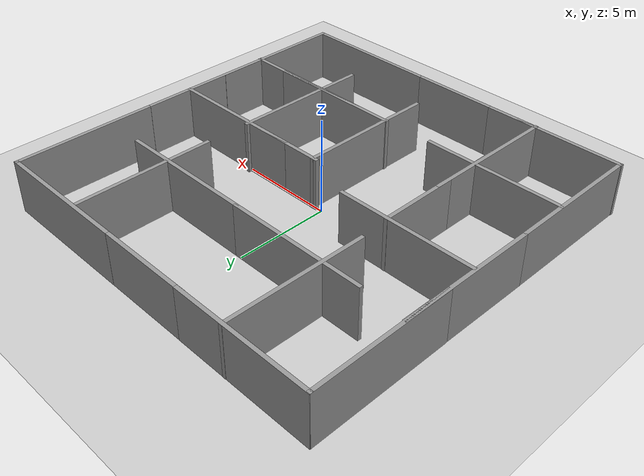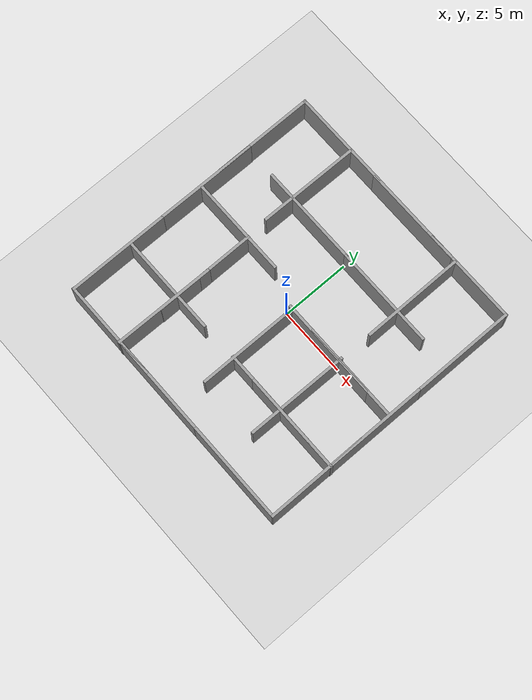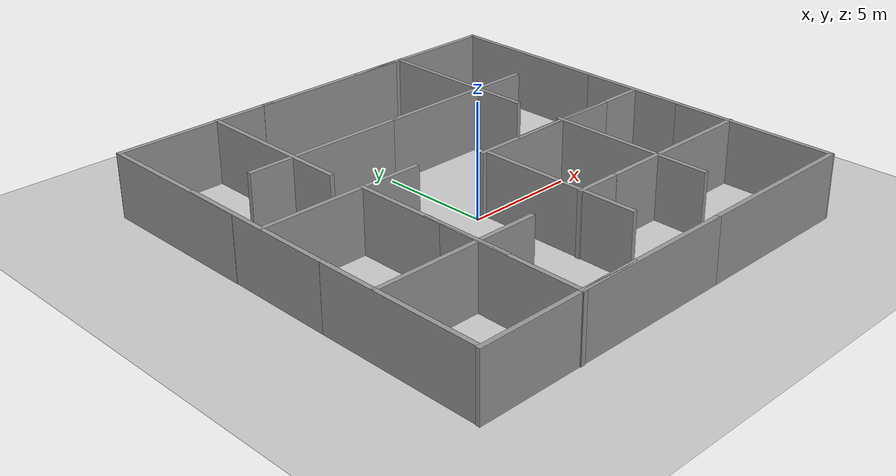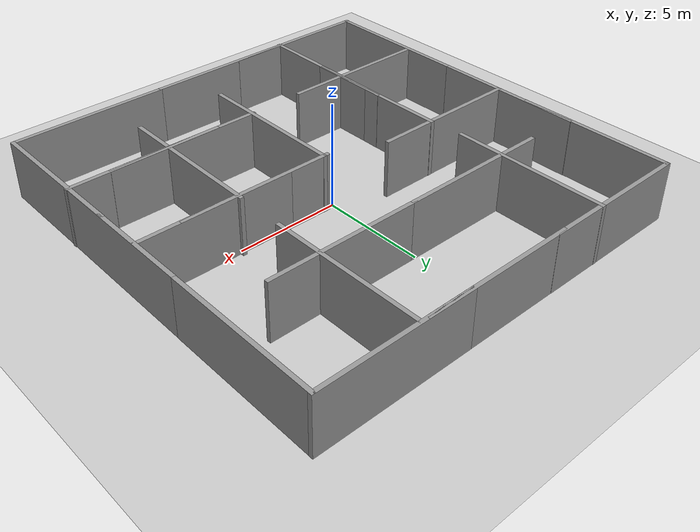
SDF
<sdf version="1.4">
 <world name="default">
  <light name="sun" type="directional">
   <pose>0 0 10 0 -0 0</pose>
   <diffuse>0.8 0.8 0.8 1</diffuse>
   <specular>0.2 0.2 0.2 1</specular>
   <attenuation>
    <range>1000</range>
    <constant>0.9</constant>
    <linear>0.01</linear>
    <quadratic>0.001</quadratic>
   </attenuation>
   <direction>-0.5 0.1 -0.9</direction>
  </light>
  <model name="ground_plane">
   <static>1</static>
   <link name="link">
    <collision name="collision">
     <geometry><plane><normal>0 0 1</normal><size>100 100</size></plane></geometry>
     <surface><friction><ode><mu>100</mu><mu2>50</mu2></ode></friction></surface>
    </collision>
    <visual name="visual">
     <cast_shadows>0</cast_shadows>
     <geometry><plane><normal>0 0 1</normal><size>100 100</size></plane></geometry>
     <material>
      <script><uri>file://media/materials/scripts/gazebo.material</uri><name>Gazebo/Grey</name></script>
     </material>
    </visual>
    <velocity_decay><linear>0</linear><angular>0</angular></velocity_decay>
   </link>
  </model>
  <physics type="ode">
   <max_step_size>0.001</max_step_size>
   <real_time_factor>1</real_time_factor>
   <real_time_update_rate>1000</real_time_update_rate>
   <gravity>0 0 -9.8</gravity>
  </physics>
  <scene><ambient>0.4 0.4 0.4 1</ambient><background>0.7 0.7 0.7 1</background><shadows>1</shadows></scene>
  <spherical_coordinates>
   <surface_model>EARTH_WGS84</surface_model>
   <latitude_deg>0</latitude_deg>
   <longitude_deg>0</longitude_deg>
   <elevation>0</elevation>
   <heading_deg>0</heading_deg>
  </spherical_coordinates>
  <model name="grey_wall">
   <static>1</static>
   <link name="link">
    <pose>0 0 1.4 0 -0 0</pose>
    <collision name="collision"><geometry><box><size>7.5 0.2 2.8</size></box></geometry></collision>
    <visual name="visual">
     <cast_shadows>0</cast_shadows>
     <geometry><box><size>7.5 0.2 2.8</size></box></geometry>
     <material>
      <script>
       <uri>model://grey_wall/materials/scripts</uri>
       <uri>model://grey_wall/materials/textures</uri>
       <name>vrc/grey_wall</name>
      </script>
     </material>
    </visual>
    <velocity_decay><linear>0</linear><angular>0</angular></velocity_decay>
   </link>
   <pose>-5.96157 10.0081 0 0 -0 0</pose>
  </model>
  <model name="grey_wall_0">
   <static>1</static>
   <link name="link">
    <pose>0 0 1.4 0 -0 0</pose>
    <collision name="collision"><geometry><box><size>7.5 0.2 2.8</size></box></geometry></collision>
    <visual name="visual">
     <cast_shadows>0</cast_shadows>
     <geometry><box><size>7.5 0.2 2.8</size></box></geometry>
     <material>
      <script>
       <uri>model://grey_wall/materials/scripts</uri>
       <uri>model://grey_wall/materials/textures</uri>
       <name>vrc/grey_wall</name>
      </script>
     </material>
    </visual>
    <velocity_decay><linear>0</linear><angular>0</angular></velocity_decay>
   </link>
   <pose>1 10 0 0 -0 0</pose>
  </model>
  <model name="grey_wall_1">
   <static>1</static>
   <link name="link">
    <pose>0 0 1.4 0 -0 0</pose>
    <collision name="collision"><geometry><box><size>7.5 0.2 2.8</size></box></geometry></collision>
    <visual name="visual">
     <cast_shadows>0</cast_shadows>
     <geometry><box><size>7.5 0.2 2.8</size></box></geometry>
     <material>
      <script>
       <uri>model://grey_wall/materials/scripts</uri>
       <uri>model://grey_wall/materials/textures</uri>
       <name>vrc/grey_wall</name>
      </script>
     </material>
    </visual>
    <velocity_decay><linear>0</linear><angular>0</angular></velocity_decay>
   </link>
   <pose>6.14786 10.0027 0 0 -0 0</pose>
  </model>
  <model name="grey_wall_3">
   <static>1</static>
   <link name="link">
    <pose>0 0 1.4 0 -0 0</pose>
    <collision name="collision"><geometry><box><size>7.5 0.2 2.8</size></box></geometry></collision>
    <visual name="visual">
     <cast_shadows>0</cast_shadows>
     <geometry><box><size>7.5 0.2 2.8</size></box></geometry>
     <material>
      <script>
       <uri>model://grey_wall/materials/scripts</uri>
       <uri>model://grey_wall/materials/textures</uri>
       <name>vrc/grey_wall</name>
      </script>
     </material>
    </visual>
    <velocity_decay><linear>0</linear><angular>0</angular></velocity_decay>
   </link>
   <pose>9.78538 6.34474 0 0 -0 1.56855</pose>
  </model>
  <model name="grey_wall_4">
   <static>1</static>
   <link name="link">
    <pose>0 0 1.4 0 -0 0</pose>
    <collision name="collision"><geometry><box><size>7.5 0.2 2.8</size></box></geometry></collision>
    <visual name="visual">
     <cast_shadows>0</cast_shadows>
     <geometry><box><size>7.5 0.2 2.8</size></box></geometry>
     <material>
      <script>
       <uri>model://grey_wall/materials/scripts</uri>
       <uri>model://grey_wall/materials/textures</uri>
       <name>vrc/grey_wall</name>
      </script>
     </material>
    </visual>
    <velocity_decay><linear>0</linear><angular>0</angular></velocity_decay>
   </link>
   <pose>9.75711 -1.13244 0 0 -0 1.56736</pose>
  </model>
  <model name="grey_wall_5">
   <static>1</static>
   <link name="link">
    <pose>0 0 1.4 0 -0 0</pose>
    <collision name="collision"><geometry><box><size>7.5 0.2 2.8</size></box></geometry></collision>
    <visual name="visual">
     <cast_shadows>0</cast_shadows>
     <geometry><box><size>7.5 0.2 2.8</size></box></geometry>
     <material>
      <script>
       <uri>model://grey_wall/materials/scripts</uri>
       <uri>model://grey_wall/materials/textures</uri>
       <name>vrc/grey_wall</name>
      </script>
     </material>
    </visual>
    <velocity_decay><linear>0</linear><angular>0</angular></velocity_decay>
   </link>
   <pose>9.73644 -5.98487 0 0 0 -1.57237</pose>
  </model>
  <model name="grey_wall_7">
   <static>1</static>
   <link name="link">
    <pose>0 0 1.4 0 -0 0</pose>
    <collision name="collision"><geometry><box><size>7.5 0.2 2.8</size></box></geometry></collision>
    <visual name="visual">
     <cast_shadows>0</cast_shadows>
     <geometry><box><size>7.5 0.2 2.8</size></box></geometry>
     <material>
      <script>
       <uri>model://grey_wall/materials/scripts</uri>
       <uri>model://grey_wall/materials/textures</uri>
       <name>vrc/grey_wall</name>
      </script>
     </material>
    </visual>
    <velocity_decay><linear>0</linear><angular>0</angular></velocity_decay>
   </link>
   <pose>5.9918 -9.64321 0 0 -0 0</pose>
  </model>
  <model name="grey_wall_8">
   <static>1</static>
   <link name="link">
    <pose>0 0 1.4 0 -0 0</pose>
    <collision name="collision"><geometry><box><size>7.5 0.2 2.8</size></box></geometry></collision>
    <visual name="visual">
     <cast_shadows>0</cast_shadows>
     <geometry><box><size>7.5 0.2 2.8</size></box></geometry>
     <material>
      <script>
       <uri>model://grey_wall/materials/scripts</uri>
       <uri>model://grey_wall/materials/textures</uri>
       <name>vrc/grey_wall</name>
      </script>
     </material>
    </visual>
    <velocity_decay><linear>0</linear><angular>0</angular></velocity_decay>
   </link>
   <pose>-1.41746 -9.64548 0 0 -0 0</pose>
  </model>
  <model name="grey_wall_9">
   <static>1</static>
   <link name="link">
    <pose>0 0 1.4 0 -0 0</pose>
    <collision name="collision"><geometry><box><size>7.5 0.2 2.8</size></box></geometry></collision>
    <visual name="visual">
     <cast_shadows>0</cast_shadows>
     <geometry><box><size>7.5 0.2 2.8</size></box></geometry>
     <material>
      <script>
       <uri>model://grey_wall/materials/scripts</uri>
       <uri>model://grey_wall/materials/textures</uri>
       <name>vrc/grey_wall</name>
      </script>
     </material>
    </visual>
    <velocity_decay><linear>0</linear><angular>0</angular></velocity_decay>
   </link>
   <pose>-6.03302 -9.64453 0 0 -0 0</pose>
  </model>
  <model name="grey_wall_10">
   <static>1</static>
   <link name="link">
    <pose>0 0 1.4 0 -0 0</pose>
    <collision name="collision"><geometry><box><size>7.5 0.2 2.8</size></box></geometry></collision>
    <visual name="visual">
     <cast_shadows>0</cast_shadows>
     <geometry><box><size>7.5 0.2 2.8</size></box></geometry>
     <material>
      <script>
       <uri>model://grey_wall/materials/scripts</uri>
       <uri>model://grey_wall/materials/textures</uri>
       <name>vrc/grey_wall</name>
      </script>
     </material>
    </visual>
    <velocity_decay><linear>0</linear><angular>0</angular></velocity_decay>
   </link>
   <pose>-9.65272 -5.97375 0 0 0 -1.57283</pose>
  </model>
  <model name="grey_wall_11">
   <static>1</static>
   <link name="link">
    <pose>0 0 1.4 0 -0 0</pose>
    <collision name="collision"><geometry><box><size>7.5 0.2 2.8</size></box></geometry></collision>
    <visual name="visual">
     <cast_shadows>0</cast_shadows>
     <geometry><box><size>7.5 0.2 2.8</size></box></geometry>
     <material>
      <script>
       <uri>model://grey_wall/materials/scripts</uri>
       <uri>model://grey_wall/materials/textures</uri>
       <name>vrc/grey_wall</name>
      </script>
     </material>
    </visual>
    <velocity_decay><linear>0</linear><angular>0</angular></velocity_decay>
   </link>
   <pose>-9.62208 1.47202 0 0 0 -1.57829</pose>
  </model>
  <model name="grey_wall_12">
   <static>1</static>
   <link name="link">
    <pose>0 0 1.4 0 -0 0</pose>
    <collision name="collision"><geometry><box><size>7.5 0.2 2.8</size></box></geometry></collision>
    <visual name="visual">
     <cast_shadows>0</cast_shadows>
     <geometry><box><size>7.5 0.2 2.8</size></box></geometry>
     <material>
      <script>
       <uri>model://grey_wall/materials/scripts</uri>
       <uri>model://grey_wall/materials/textures</uri>
       <name>vrc/grey_wall</name>
      </script>
     </material>
    </visual>
    <velocity_decay><linear>0</linear><angular>0</angular></velocity_decay>
   </link>
   <pose>-9.62412 6.33238 0 0 0 -1.57147</pose>
  </model>
  <model name="grey_wall_15">
   <static>1</static>
   <link name="link">
    <pose>0 0 1.4 0 -0 0</pose>
    <collision name="collision"><geometry><box><size>7.5 0.2 2.8</size></box></geometry></collision>
    <visual name="visual">
     <cast_shadows>0</cast_shadows>
     <geometry><box><size>7.5 0.2 2.8</size></box></geometry>
     <material>
      <script>
       <uri>model://grey_wall/materials/scripts</uri>
       <uri>model://grey_wall/materials/textures</uri>
       <name>vrc/grey_wall</name>
      </script>
     </material>
    </visual>
    <velocity_decay><linear>0</linear><angular>0</angular></velocity_decay>
   </link>
   <pose>-5.07531 6.3682 0 0 0 -1.58036</pose>
  </model>
  <model name="grey_wall_17">
   <static>1</static>
   <link name="link">
    <pose>0 0 1.4 0 -0 0</pose>
    <collision name="collision"><geometry><box><size>7.5 0.2 2.8</size></box></geometry></collision>
    <visual name="visual">
     <cast_shadows>0</cast_shadows>
     <geometry><box><size>7.5 0.2 2.8</size></box></geometry>
     <material>
      <script>
       <uri>model://grey_wall/materials/scripts</uri>
       <uri>model://grey_wall/materials/textures</uri>
       <name>vrc/grey_wall</name>
      </script>
     </material>
    </visual>
    <velocity_decay><linear>0</linear><angular>0</angular></velocity_decay>
   </link>
   <pose>5.05751 6.28099 0 0 0 -1.56973</pose>
  </model>
  <model name="grey_wall_19">
   <static>1</static>
   <link name="link">
    <pose>0 0 1.4 0 -0 0</pose>
    <collision name="collision"><geometry><box><size>7.5 0.2 2.8</size></box></geometry></collision>
    <visual name="visual">
     <cast_shadows>0</cast_shadows>
     <geometry><box><size>7.5 0.2 2.8</size></box></geometry>
     <material>
      <script>
       <uri>model://grey_wall/materials/scripts</uri>
       <uri>model://grey_wall/materials/textures</uri>
       <name>vrc/grey_wall</name>
      </script>
     </material>
    </visual>
    <velocity_decay><linear>0</linear><angular>0</angular></velocity_decay>
   </link>
   <pose>3.80185 4.96484 0 0 -0 0</pose>
  </model>
  <model name="grey_wall_21">
   <static>1</static>
   <link name="link">
    <pose>0 0 1.4 0 -0 0</pose>
    <collision name="collision"><geometry><box><size>7.5 0.2 2.8</size></box></geometry></collision>
    <visual name="visual">
     <cast_shadows>0</cast_shadows>
     <geometry><box><size>7.5 0.2 2.8</size></box></geometry>
     <material>
      <script>
       <uri>model://grey_wall/materials/scripts</uri>
       <uri>model://grey_wall/materials/textures</uri>
       <name>vrc/grey_wall</name>
      </script>
     </material>
    </visual>
    <velocity_decay><linear>0</linear><angular>0</angular></velocity_decay>
   </link>
   <pose>-5.96743 -4.93697 0 0 -0 0</pose>
  </model>
  <model name="grey_wall_22">
   <static>1</static>
   <link name="link">
    <pose>0 0 1.4 0 -0 0</pose>
    <collision name="collision"><geometry><box><size>7.5 0.2 2.8</size></box></geometry></collision>
    <visual name="visual">
     <cast_shadows>0</cast_shadows>
     <geometry><box><size>7.5 0.2 2.8</size></box></geometry>
     <material>
      <script>
       <uri>model://grey_wall/materials/scripts</uri>
       <uri>model://grey_wall/materials/textures</uri>
       <name>vrc/grey_wall</name>
      </script>
     </material>
    </visual>
    <velocity_decay><linear>0</linear><angular>0</angular></velocity_decay>
   </link>
   <pose>-5.97145 1.01635 0 0 -0 0</pose>
  </model>
  <model name="grey_wall_13">
   <static>1</static>
   <link name="link">
    <pose>0 0 1.4 0 -0 0</pose>
    <collision name="collision"><geometry><box><size>7.5 0.2 2.8</size></box></geometry></collision>
    <visual name="visual">
     <cast_shadows>0</cast_shadows>
     <geometry><box><size>7.5 0.2 2.8</size></box></geometry>
     <material>
      <script>
       <uri>model://grey_wall/materials/scripts</uri>
       <uri>model://grey_wall/materials/textures</uri>
       <name>vrc/grey_wall</name>
      </script>
     </material>
    </visual>
    <velocity_decay><linear>0</linear><angular>0</angular></velocity_decay>
   </link>
   <pose>4.98844 -3.45891 0 0 -0 1.56167</pose>
  </model>
  <model name="grey_wall_20">
   <static>1</static>
   <link name="link">
    <pose>0 0 1.4 0 -0 0</pose>
    <collision name="collision"><geometry><box><size>7.5 0.2 2.8</size></box></geometry></collision>
    <visual name="visual">
     <cast_shadows>0</cast_shadows>
     <geometry><box><size>7.5 0.2 2.8</size></box></geometry>
     <material>
      <script>
       <uri>model://grey_wall/materials/scripts</uri>
       <uri>model://grey_wall/materials/textures</uri>
       <name>vrc/grey_wall</name>
      </script>
     </material>
    </visual>
    <velocity_decay><linear>0</linear><angular>0</angular></velocity_decay>
   </link>
   <pose>-3.45838 4.96552 0 0 -0 0</pose>
  </model>
  <model name="grey_wall_23">
   <static>1</static>
   <link name="link">
    <pose>0 0 1.4 0 -0 0</pose>
    <collision name="collision"><geometry><box><size>7.5 0.2 2.8</size></box></geometry></collision>
    <visual name="visual">
     <cast_shadows>0</cast_shadows>
     <geometry><box><size>7.5 0.2 2.8</size></box></geometry>
     <material>
      <script>
       <uri>model://grey_wall/materials/scripts</uri>
       <uri>model://grey_wall/materials/textures</uri>
       <name>vrc/grey_wall</name>
      </script>
     </material>
    </visual>
    <velocity_decay><linear>0</linear><angular>0</angular></velocity_decay>
   </link>
   <pose>-4.99582 -6.02842 0 0 0 -1.58157</pose>
  </model>
  <model name="grey_wall_24">
   <static>1</static>
   <link name="link">
    <pose>0 0 1.4 0 -0 0</pose>
    <collision name="collision"><geometry><box><size>7.5 0.2 2.8</size></box></geometry></collision>
    <visual name="visual">
     <cast_shadows>0</cast_shadows>
     <geometry><box><size>7.5 0.2 2.8</size></box></geometry>
     <material>
      <script>
       <uri>model://grey_wall/materials/scripts</uri>
       <uri>model://grey_wall/materials/textures</uri>
       <name>vrc/grey_wall</name>
      </script>
     </material>
    </visual>
    <velocity_decay><linear>0</linear><angular>0</angular></velocity_decay>
   </link>
   <pose>-4.96483 -2.61737 0 0 -0 1.57117</pose>
  </model>
  <model name="grey_wall_25">
   <static>1</static>
   <link name="link">
    <pose>0 0 1.4 0 -0 0</pose>
    <collision name="collision"><geometry><box><size>7.5 0.2 2.8</size></box></geometry></collision>
    <visual name="visual">
     <cast_shadows>0</cast_shadows>
     <geometry><box><size>7.5 0.2 2.8</size></box></geometry>
     <material>
      <script>
       <uri>model://grey_wall/materials/scripts</uri>
       <uri>model://grey_wall/materials/textures</uri>
       <name>vrc/grey_wall</name>
      </script>
     </material>
    </visual>
    <velocity_decay><linear>0</linear><angular>0</angular></velocity_decay>
   </link>
   <pose>0.511267 -3.60062 0 0 -0 1.56625</pose>
  </model>
  <model name="grey_wall_26">
   <static>1</static>
   <link name="link">
    <pose>0 0 1.4 0 -0 0</pose>
    <collision name="collision"><geometry><box><size>7.5 0.2 2.8</size></box></geometry></collision>
    <visual name="visual">
     <cast_shadows>0</cast_shadows>
     <geometry><box><size>7.5 0.2 2.8</size></box></geometry>
     <material>
      <script>
       <uri>model://grey_wall/materials/scripts</uri>
       <uri>model://grey_wall/materials/textures</uri>
       <name>vrc/grey_wall</name>
      </script>
     </material>
    </visual>
    <velocity_decay><linear>0</linear><angular>0</angular></velocity_decay>
   </link>
   <pose>6.11048 0.036888 0 0 -0 0</pose>
  </model>
  <model name="grey_wall_27">
   <static>1</static>
   <link name="link">
    <pose>0 0 1.4 0 -0 0</pose>
    <collision name="collision"><geometry><box><size>7.5 0.2 2.8</size></box></geometry></collision>
    <visual name="visual">
     <cast_shadows>0</cast_shadows>
     <geometry><box><size>7.5 0.2 2.8</size></box></geometry>
     <material>
      <script>
       <uri>model://grey_wall/materials/scripts</uri>
       <uri>model://grey_wall/materials/textures</uri>
       <name>vrc/grey_wall</name>
      </script>
     </material>
    </visual>
    <velocity_decay><linear>0</linear><angular>0</angular></velocity_decay>
   </link>
   <pose>4 0.036029 0 0 -0 0</pose>
  </model>
  <model name="grey_wall_28">
   <static>1</static>
   <link name="link">
    <pose>0 0 1.4 0 -0 0</pose>
    <collision name="collision"><geometry><box><size>7.5 0.2 2.8</size></box></geometry></collision>
    <visual name="visual">
     <cast_shadows>0</cast_shadows>
     <geometry><box><size>7.5 0.2 2.8</size></box></geometry>
     <material>
      <script>
       <uri>model://grey_wall/materials/scripts</uri>
       <uri>model://grey_wall/materials/textures</uri>
       <name>vrc/grey_wall</name>
      </script>
     </material>
    </visual>
    <velocity_decay><linear>0</linear><angular>0</angular></velocity_decay>
   </link>
   <pose>6.12677 -4.8792 0 0 -0 0</pose>
  </model>
  <model name="grey_wall_29">
   <static>1</static>
   <link name="link">
    <pose>0 0 1.4 0 -0 0</pose>
    <collision name="collision"><geometry><box><size>7.5 0.2 2.8</size></box></geometry></collision>
    <visual name="visual">
     <cast_shadows>0</cast_shadows>
     <geometry><box><size>7.5 0.2 2.8</size></box></geometry>
     <material>
      <script>
       <uri>model://grey_wall/materials/scripts</uri>
       <uri>model://grey_wall/materials/textures</uri>
       <name>vrc/grey_wall</name>
      </script>
     </material>
    </visual>
    <velocity_decay><linear>0</linear><angular>0</angular></velocity_decay>
   </link>
   <pose>4.10249 -4.87451 0 0 -0 0</pose>
  </model>
 </world>
</sdf>
